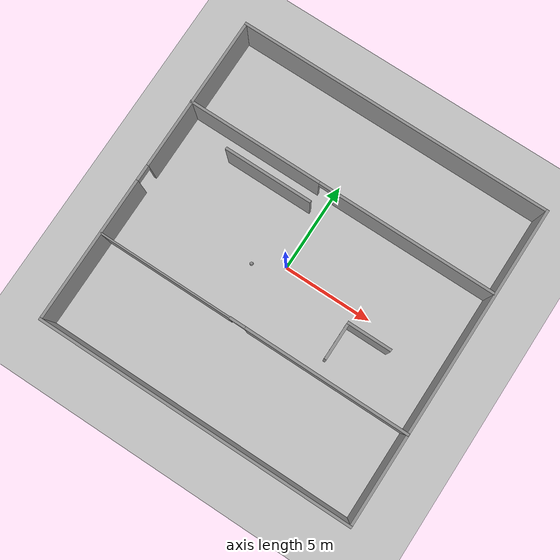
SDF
<sdf version="1.6">
 <world name="default">
  <plugin name="welcome" filename="libwelcome_message.so"/>
  <light name="sun" type="directional">
   <pose>0 0 10 0 -0 0</pose>
   <diffuse>0.8 0.8 0.8 1</diffuse>
   <specular>0.1 0.1 0.1 1</specular>
   <attenuation>
    <range>1000</range>
    <constant>0.9</constant>
    <linear>0.01</linear>
    <quadratic>0.001</quadratic>
   </attenuation>
   <direction>-0.5 0.5 -1</direction>
  </light>
  <model name="ground_plane">
   <static>1</static>
   <link name="link">
    <collision name="collision">
     <geometry><plane><normal>0 0 1</normal><size>100 100</size></plane></geometry>
     <surface><friction><ode><mu>100</mu><mu2>50</mu2></ode></friction></surface>
    </collision>
    <visual name="visual">
     <cast_shadows>0</cast_shadows>
     <geometry><plane><normal>0 0 1</normal><size>100 100</size></plane></geometry>
     <material>
      <script><uri>file://media/materials/scripts/gazebo.material</uri><name>Gazebo/Grey</name></script>
     </material>
    </visual>
   </link>
  </model>
  <gravity>0 0 -9.8</gravity>
  <magnetic_field>6e-06 2.3e-05 -4.2e-05</magnetic_field>
  <atmosphere type="adiabatic"/>
  <physics name="default_physics" default="0" type="ode">
   <max_step_size>0.001</max_step_size>
   <real_time_factor>1</real_time_factor>
   <real_time_update_rate>1000</real_time_update_rate>
  </physics>
  <scene><ambient>0.4 0.4 0.4 1</ambient><background>0.7 0.7 0.7 1</background><shadows>1</shadows></scene>
  <spherical_coordinates>
   <surface_model>EARTH_WGS84</surface_model>
   <latitude_deg>0</latitude_deg>
   <longitude_deg>0</longitude_deg>
   <elevation>0</elevation>
   <heading_deg>0</heading_deg>
  </spherical_coordinates>
  <model name="my_ball">
   <link name="link">
    <inertial>
     <mass>1</mass>
     <inertia><ixx>0.1</ixx><ixy>0</ixy><ixz>0</ixz><iyy>0.1</iyy><iyz>0</iyz><izz>0.1</izz></inertia>
    </inertial>
    <visual name="visual">
     <geometry><sphere><radius>0.1</radius></sphere></geometry>
     <material>
      <script><name>Gazebo/Grey</name><uri>file://media/materials/scripts/gazebo.material</uri></script>
      <shader type="pixel"><normal_map>__default__</normal_map></shader>
      <ambient>1 1 1 1</ambient>
      <diffuse>1 1 1 1</diffuse>
      <specular>1 1 1 1</specular>
      <emissive>0 0 0 1</emissive>
     </material>
    </visual>
    <collision name="collision">
     <geometry><sphere><radius>0.1</radius></sphere></geometry>
     <surface>
      <friction>
       <ode><mu>1</mu><mu2>1</mu2><fdir1>0 0 0</fdir1><slip1>0</slip1><slip2>0</slip2></ode>
       <torsional>
        <coefficient>1</coefficient>
        <patch_radius>0</patch_radius>
        <surface_radius>0</surface_radius>
        <use_patch_radius>1</use_patch_radius>
        <ode><slip>0</slip></ode>
       </torsional>
      </friction>
      <bounce><restitution_coefficient>0</restitution_coefficient><threshold>1e+06</threshold></bounce>
      <contact>
       <collide_without_contact>0</collide_without_contact>
       <collide_without_contact_bitmask>1</collide_without_contact_bitmask>
       <collide_bitmask>1</collide_bitmask>
       <ode>
        <soft_cfm>0</soft_cfm>
        <soft_erp>0.2</soft_erp>
        <kp>1e+13</kp>
        <kd>1</kd>
        <max_vel>0.01</max_vel>
        <min_depth>0</min_depth>
       </ode>
       <bullet>
        <split_impulse>1</split_impulse>
        <split_impulse_penetration_threshold>-0.01</split_impulse_penetration_threshold>
        <soft_cfm>0</soft_cfm>
        <soft_erp>0.2</soft_erp>
        <kp>1e+13</kp>
        <kd>1</kd>
       </bullet>
      </contact>
     </surface>
    </collision>
   </link>
   <static>0</static>
   <pose>-1.60298 -0.810793 0.1 0 -0 0</pose>
  </model>
  <model name="wall">
   <pose>0.523449 0.0913 0 0 -0 0</pose>
   <link name="Wall_10">
    <collision name="Wall_10_Collision">
     <geometry><box><size>17.8282 0.15 2.5</size></box></geometry>
     <pose>0 0 1.25 0 -0 0</pose>
    </collision>
    <visual name="Wall_10_Visual">
     <pose>0 0 1.25 0 -0 0</pose>
     <geometry><box><size>17.8282 0.15 2.5</size></box></geometry>
     <material>
      <script><uri>file://media/materials/scripts/gazebo.material</uri><name>Gazebo/Grey</name></script>
      <ambient>1 1 1 1</ambient>
     </material>
     <meta><layer>0</layer></meta>
    </visual>
    <pose>0.010108 -8.925 0 0 -0 0</pose>
   </link>
   <link name="Wall_11">
    <collision name="Wall_11_Collision">
     <geometry><box><size>18 0.15 2.5</size></box></geometry>
     <pose>0 0 1.25 0 -0 0</pose>
    </collision>
    <visual name="Wall_11_Visual">
     <pose>0 0 1.25 0 -0 0</pose>
     <geometry><box><size>18 0.15 2.5</size></box></geometry>
     <material>
      <script><uri>file://media/materials/scripts/gazebo.material</uri><name>Gazebo/Grey</name></script>
      <ambient>1 1 1 1</ambient>
     </material>
     <meta><layer>0</layer></meta>
    </visual>
    <pose>8.84911 0 0 0 -0 1.5708</pose>
   </link>
   <link name="Wall_12">
    <collision name="Wall_12_Collision">
     <geometry><box><size>17.8282 0.15 2.5</size></box></geometry>
     <pose>0 0 1.25 0 -0 0</pose>
    </collision>
    <visual name="Wall_12_Visual">
     <pose>0 0 1.25 0 -0 0</pose>
     <geometry><box><size>17.8282 0.15 2.5</size></box></geometry>
     <material>
      <script><uri>file://media/materials/scripts/gazebo.material</uri><name>Gazebo/Grey</name></script>
      <ambient>1 1 1 1</ambient>
     </material>
     <meta><layer>0</layer></meta>
    </visual>
    <pose>0.010108 8.925 0 0 -0 3.14159</pose>
   </link>
   <link name="Wall_14">
    <pose>-0.049221 4.04054 0 0 -0 0</pose>
    <visual name="Wall_14_Visual_0">
     <pose>-5.04308 0 1.25 0 -0 0</pose>
     <geometry><box><size>7.66384 0.15 2.5</size></box></geometry>
     <material>
      <script><uri>file://media/materials/scripts/gazebo.material</uri><name>Gazebo/Grey</name></script>
      <ambient>1 1 1 1</ambient>
     </material>
     <meta><layer>0</layer></meta>
    </visual>
    <collision name="Wall_14_Collision_0">
     <geometry><box><size>7.66384 0.15 2.5</size></box></geometry>
     <pose>-5.04308 0 1.25 0 -0 0</pose>
    </collision>
    <visual name="Wall_14_Visual_1">
     <pose>4.28192 0 1.25 0 -0 0</pose>
     <geometry><box><size>9.18616 0.15 2.5</size></box></geometry>
     <material>
      <script><uri>file://media/materials/scripts/gazebo.material</uri><name>Gazebo/Grey</name></script>
      <ambient>1 1 1 1</ambient>
     </material>
     <meta><layer>0</layer></meta>
    </visual>
    <collision name="Wall_14_Collision_1">
     <geometry><box><size>9.18616 0.15 2.5</size></box></geometry>
     <pose>4.28192 0 1.25 0 -0 0</pose>
    </collision>
    <visual name="Wall_14_Visual_2">
     <pose>-0.761157 0 2.25 0 -0 0</pose>
     <geometry><box><size>0.9 0.15 0.5</size></box></geometry>
     <material>
      <script><uri>file://media/materials/scripts/gazebo.material</uri><name>Gazebo/Grey</name></script>
      <ambient>1 1 1 1</ambient>
     </material>
     <meta><layer>0</layer></meta>
    </visual>
    <collision name="Wall_14_Collision_2">
     <geometry><box><size>0.9 0.15 0.5</size></box></geometry>
     <pose>-0.761157 0 2.25 0 -0 0</pose>
    </collision>
   </link>
   <link name="Wall_16">
    <pose>0.029138 -3.89798 0 0 -0 0</pose>
    <visual name="Wall_16_Visual_0">
     <pose>-5.08678 0 1.25 0 -0 0</pose>
     <geometry><box><size>7.57645 0.10 2.5</size></box></geometry>
     <material>
      <script><uri>file://media/materials/scripts/gazebo.material</uri><name>Gazebo/Grey</name></script>
      <ambient>1 1 1 1</ambient>
     </material>
     <meta><layer>0</layer></meta>
    </visual>
    <collision name="Wall_16_Collision_0">
     <geometry><box><size>7.57645 0.15 2.5</size></box></geometry>
     <pose>-5.08678 0 1.25 0 -0 0</pose>
    </collision>
    <visual name="Wall_16_Visual_1">
     <pose>4.23822 0 1.25 0 -0 0</pose>
     <geometry><box><size>9.27355 0.15 2.5</size></box></geometry>
     <material>
      <script><uri>file://media/materials/scripts/gazebo.material</uri><name>Gazebo/Grey</name></script>
      <ambient>1 1 1 1</ambient>
     </material>
     <meta><layer>0</layer></meta>
    </visual>
    <collision name="Wall_16_Collision_1">
     <geometry><box><size>9.27355 0.15 2.5</size></box></geometry>
     <pose>4.23822 0 1.25 0 -0 0</pose>
    </collision>
    <visual name="Wall_16_Visual_2">
     <pose>-0.848553 0 2.25 0 -0 0</pose>
     <geometry><box><size>0.9 0.15 0.5</size></box></geometry>
     <material>
      <script><uri>file://media/materials/scripts/gazebo.material</uri><name>Gazebo/Grey</name></script>
      <ambient>1 1 1 1</ambient>
     </material>
     <meta><layer>0</layer></meta>
    </visual>
    <collision name="Wall_16_Collision_2">
     <geometry><box><size>0.9 0.15 0.5</size></box></geometry>
     <pose>-0.848553 0 2.25 0 -0 0</pose>
    </collision>
   </link>
   <link name="Wall_9">
    <pose>-8.82889 0 0 0 0 -1.5708</pose>
    <visual name="Wall_9_Visual_0">
     <pose>-4.57116 0 1.25 0 -0 0</pose>
     <geometry><box><size>8.85768 0.15 2.5</size></box></geometry>
     <material>
      <script><uri>file://media/materials/scripts/gazebo.material</uri><name>Gazebo/Grey</name></script>
      <ambient>1 1 1 1</ambient>
     </material>
     <meta><layer>0</layer></meta>
    </visual>
    <collision name="Wall_9_Collision_0">
     <geometry><box><size>8.85768 0.15 2.5</size></box></geometry>
     <pose>-4.57116 0 1.25 0 -0 0</pose>
    </collision>
    <visual name="Wall_9_Visual_1">
     <pose>4.87884 0 1.25 0 -0 0</pose>
     <geometry><box><size>8.24232 0.15 2.5</size></box></geometry>
     <material>
      <script><uri>file://media/materials/scripts/gazebo.material</uri><name>Gazebo/Grey</name></script>
      <ambient>1 1 1 1</ambient>
     </material>
     <meta><layer>0</layer></meta>
    </visual>
    <collision name="Wall_9_Collision_1">
     <geometry><box><size>8.24232 0.15 2.5</size></box></geometry>
     <pose>4.87884 0 1.25 0 -0 0</pose>
    </collision>
    <visual name="Wall_9_Visual_2">
     <pose>0.30768 0 2.25 0 -0 0</pose>
     <geometry><box><size>0.9 0.15 0.5</size></box></geometry>
     <material>
      <script><uri>file://media/materials/scripts/gazebo.material</uri><name>Gazebo/Grey</name></script>
      <ambient>1 1 1 1</ambient>
     </material>
     <meta><layer>0</layer></meta>
    </visual>
    <collision name="Wall_9_Collision_2">
     <geometry><box><size>0.9 0.15 0.5</size></box></geometry>
     <pose>0.30768 0 2.25 0 -0 0</pose>
    </collision>
   </link>
   <link name="Wall_222">
    <collision name="Wall_222_Collision">
     <geometry><box><size>2.5 0.15 2.5</size></box></geometry>
     <pose>0 0 1.25 0 -0 0</pose>
    </collision>
    <visual name="Wall_222_Visual">
     <pose>0 0 1.25 0 -0 0</pose>
     <geometry><box><size>2.5 0.15 2.5</size></box></geometry>
     <material>
      <script><uri>file://media/materials/scripts/gazebo.material</uri><name>Gazebo/Grey</name></script>
      <ambient>1 1 1 1</ambient>
     </material>
     <meta><layer>0</layer></meta>
    </visual>
    <pose>4.84326 -0.989786 0 0 -0 3.14159</pose>
   </link>
   <link name="Wall_433">
    <collision name="Wall_433_Collision">
     <geometry><box><size>2 0.15 2.5</size></box></geometry>
     <pose>0 0 1.25 0 -0 0</pose>
    </collision>
    <visual name="Wall_433_Visual">
     <pose>0 0 1.25 0 -0 0</pose>
     <geometry><box><size>2 0.15 2.5</size></box></geometry>
     <material>
      <script><uri>file://media/materials/scripts/gazebo.material</uri><name>Gazebo/Grey</name></script>
      <ambient>1 1 1 1</ambient>
     </material>
     <meta><layer>0</layer></meta>
    </visual>
    <pose>3.66405 -2.06473 0 0 -0 1.5708</pose>
   </link>
   <link name="Wall_788">
    <collision name="Wall_788_Collision">
     <geometry><box><size>5 0.15 2.5</size></box></geometry>
     <pose>0 0 1.25 0 -0 0</pose>
    </collision>
    <visual name="Wall_788_Visual">
     <pose>0 0 1.25 0 -0 0</pose>
     <geometry><box><size>5 0.15 2.5</size></box></geometry>
     <material>
      <script><uri>file://media/materials/scripts/gazebo.material</uri><name>Gazebo/Grey</name></script>
      <ambient>1 1 1 1</ambient>
     </material>
     <meta><layer>0</layer></meta>
    </visual>
    <pose>-3.59325 2.98973 0 0 -0 0</pose>
   </link>
   <static>1</static>
  </model>
 </world>
</sdf>
